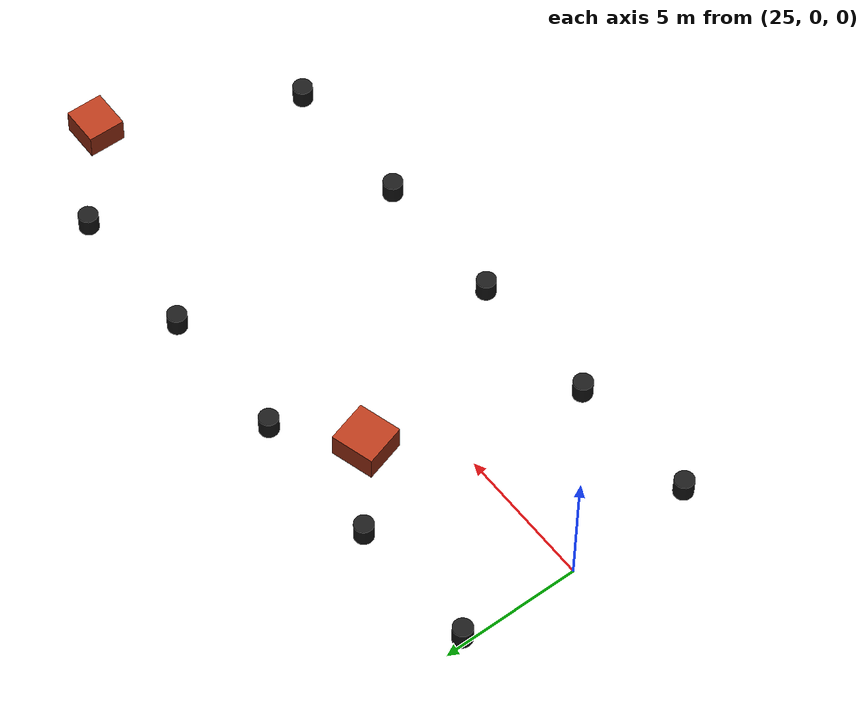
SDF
<sdf version="1.9">
 <world name="baja_track">
  <model name="obstacle_1">
   <static>true</static>
   <pose>32.50000 2.41393 0.49679 0 0 0.28152</pose>
   <link name="body">
    <collision name="collision">
     <geometry><box><size>1.5481 1.5109 0.9336</size></box></geometry>
     <surface><friction><ode><mu>0.9</mu><mu2>0.9</mu2></ode></friction></surface>
    </collision>
    <visual name="visual">
     <geometry><box><size>1.5481 1.5109 0.9336</size></box></geometry>
     <material>
      <ambient>0.42 0.12 0.07 1</ambient>
      <diffuse>0.70 0.22 0.10 1</diffuse>
      <pbr><metal><roughness>0.9</roughness><metalness>0.0</metalness></metal></pbr>
     </material>
    </visual>
   </link>
  </model>
  <model name="obstacle_2">
   <static>true</static>
   <pose>48.00000 1.99419 0.47470 0 0 -0.01950</pose>
   <link name="body">
    <collision name="collision">
     <geometry><box><size>1.3806 1.3039 0.8894</size></box></geometry>
     <surface><friction><ode><mu>0.9</mu><mu2>0.9</mu2></ode></friction></surface>
    </collision>
    <visual name="visual">
     <geometry><box><size>1.3806 1.3039 0.8894</size></box></geometry>
     <material>
      <ambient>0.42 0.12 0.07 1</ambient>
      <diffuse>0.70 0.22 0.10 1</diffuse>
      <pbr><metal><roughness>0.9</roughness><metalness>0.0</metalness></metal></pbr>
     </material>
    </visual>
   </link>
  </model>
  <model name="edge_tire_10">
   <static>true</static>
   <pose>25.00000 4.40000 0.79646 0 0 0.00000</pose>
   <link name="body">
    <collision name="collision">
     <geometry><cylinder><radius>0.340</radius><length>0.700</length></cylinder></geometry>
     <surface><friction><ode><mu>0.9</mu><mu2>0.9</mu2></ode></friction></surface>
    </collision>
    <visual name="visual">
     <geometry><cylinder><radius>0.340</radius><length>0.700</length></cylinder></geometry>
     <material>
      <ambient>0.05 0.05 0.05 1</ambient>
      <diffuse>0.10 0.10 0.10 1</diffuse>
      <pbr><metal><roughness>0.8</roughness><metalness>0.0</metalness></metal></pbr>
     </material>
    </visual>
   </link>
  </model>
  <model name="edge_tire_11">
   <static>true</static>
   <pose>25.00000 -4.40000 0.79646 0 0 0.00000</pose>
   <link name="body">
    <collision name="collision">
     <geometry><cylinder><radius>0.340</radius><length>0.700</length></cylinder></geometry>
     <surface><friction><ode><mu>0.9</mu><mu2>0.9</mu2></ode></friction></surface>
    </collision>
    <visual name="visual">
     <geometry><cylinder><radius>0.340</radius><length>0.700</length></cylinder></geometry>
     <material>
      <ambient>0.05 0.05 0.05 1</ambient>
      <diffuse>0.10 0.10 0.10 1</diffuse>
      <pbr><metal><roughness>0.8</roughness><metalness>0.0</metalness></metal></pbr>
     </material>
    </visual>
   </link>
  </model>
  <model name="edge_tire_12">
   <static>true</static>
   <pose>30.00000 4.40000 0.35000 0 0 0.00000</pose>
   <link name="body">
    <collision name="collision">
     <geometry><cylinder><radius>0.340</radius><length>0.700</length></cylinder></geometry>
     <surface><friction><ode><mu>0.9</mu><mu2>0.9</mu2></ode></friction></surface>
    </collision>
    <visual name="visual">
     <geometry><cylinder><radius>0.340</radius><length>0.700</length></cylinder></geometry>
     <material>
      <ambient>0.05 0.05 0.05 1</ambient>
      <diffuse>0.10 0.10 0.10 1</diffuse>
      <pbr><metal><roughness>0.8</roughness><metalness>0.0</metalness></metal></pbr>
     </material>
    </visual>
   </link>
  </model>
  <model name="edge_tire_13">
   <static>true</static>
   <pose>30.00000 -4.40000 0.35000 0 0 0.00000</pose>
   <link name="body">
    <collision name="collision">
     <geometry><cylinder><radius>0.340</radius><length>0.700</length></cylinder></geometry>
     <surface><friction><ode><mu>0.9</mu><mu2>0.9</mu2></ode></friction></surface>
    </collision>
    <visual name="visual">
     <geometry><cylinder><radius>0.340</radius><length>0.700</length></cylinder></geometry>
     <material>
      <ambient>0.05 0.05 0.05 1</ambient>
      <diffuse>0.10 0.10 0.10 1</diffuse>
      <pbr><metal><roughness>0.8</roughness><metalness>0.0</metalness></metal></pbr>
     </material>
    </visual>
   </link>
  </model>
  <model name="edge_tire_14">
   <static>true</static>
   <pose>35.00000 4.40000 0.35000 0 0 0.00000</pose>
   <link name="body">
    <collision name="collision">
     <geometry><cylinder><radius>0.340</radius><length>0.700</length></cylinder></geometry>
     <surface><friction><ode><mu>0.9</mu><mu2>0.9</mu2></ode></friction></surface>
    </collision>
    <visual name="visual">
     <geometry><cylinder><radius>0.340</radius><length>0.700</length></cylinder></geometry>
     <material>
      <ambient>0.05 0.05 0.05 1</ambient>
      <diffuse>0.10 0.10 0.10 1</diffuse>
      <pbr><metal><roughness>0.8</roughness><metalness>0.0</metalness></metal></pbr>
     </material>
    </visual>
   </link>
  </model>
  <model name="edge_tire_15">
   <static>true</static>
   <pose>35.00000 -4.40000 0.35000 0 0 0.00000</pose>
   <link name="body">
    <collision name="collision">
     <geometry><cylinder><radius>0.340</radius><length>0.700</length></cylinder></geometry>
     <surface><friction><ode><mu>0.9</mu><mu2>0.9</mu2></ode></friction></surface>
    </collision>
    <visual name="visual">
     <geometry><cylinder><radius>0.340</radius><length>0.700</length></cylinder></geometry>
     <material>
      <ambient>0.05 0.05 0.05 1</ambient>
      <diffuse>0.10 0.10 0.10 1</diffuse>
      <pbr><metal><roughness>0.8</roughness><metalness>0.0</metalness></metal></pbr>
     </material>
    </visual>
   </link>
  </model>
  <model name="edge_tire_16">
   <static>true</static>
   <pose>40.00000 4.40000 0.35000 0 0 0.00000</pose>
   <link name="body">
    <collision name="collision">
     <geometry><cylinder><radius>0.340</radius><length>0.700</length></cylinder></geometry>
     <surface><friction><ode><mu>0.9</mu><mu2>0.9</mu2></ode></friction></surface>
    </collision>
    <visual name="visual">
     <geometry><cylinder><radius>0.340</radius><length>0.700</length></cylinder></geometry>
     <material>
      <ambient>0.05 0.05 0.05 1</ambient>
      <diffuse>0.10 0.10 0.10 1</diffuse>
      <pbr><metal><roughness>0.8</roughness><metalness>0.0</metalness></metal></pbr>
     </material>
    </visual>
   </link>
  </model>
  <model name="edge_tire_17">
   <static>true</static>
   <pose>40.00000 -4.40000 0.35000 0 0 0.00000</pose>
   <link name="body">
    <collision name="collision">
     <geometry><cylinder><radius>0.340</radius><length>0.700</length></cylinder></geometry>
     <surface><friction><ode><mu>0.9</mu><mu2>0.9</mu2></ode></friction></surface>
    </collision>
    <visual name="visual">
     <geometry><cylinder><radius>0.340</radius><length>0.700</length></cylinder></geometry>
     <material>
      <ambient>0.05 0.05 0.05 1</ambient>
      <diffuse>0.10 0.10 0.10 1</diffuse>
      <pbr><metal><roughness>0.8</roughness><metalness>0.0</metalness></metal></pbr>
     </material>
    </visual>
   </link>
  </model>
  <model name="edge_tire_18">
   <static>true</static>
   <pose>45.00000 4.40000 0.35000 0 0 0.00000</pose>
   <link name="body">
    <collision name="collision">
     <geometry><cylinder><radius>0.340</radius><length>0.700</length></cylinder></geometry>
     <surface><friction><ode><mu>0.9</mu><mu2>0.9</mu2></ode></friction></surface>
    </collision>
    <visual name="visual">
     <geometry><cylinder><radius>0.340</radius><length>0.700</length></cylinder></geometry>
     <material>
      <ambient>0.05 0.05 0.05 1</ambient>
      <diffuse>0.10 0.10 0.10 1</diffuse>
      <pbr><metal><roughness>0.8</roughness><metalness>0.0</metalness></metal></pbr>
     </material>
    </visual>
   </link>
  </model>
  <model name="edge_tire_19">
   <static>true</static>
   <pose>45.00000 -4.40000 0.35000 0 0 0.00000</pose>
   <link name="body">
    <collision name="collision">
     <geometry><cylinder><radius>0.340</radius><length>0.700</length></cylinder></geometry>
     <surface><friction><ode><mu>0.9</mu><mu2>0.9</mu2></ode></friction></surface>
    </collision>
    <visual name="visual">
     <geometry><cylinder><radius>0.340</radius><length>0.700</length></cylinder></geometry>
     <material>
      <ambient>0.05 0.05 0.05 1</ambient>
      <diffuse>0.10 0.10 0.10 1</diffuse>
      <pbr><metal><roughness>0.8</roughness><metalness>0.0</metalness></metal></pbr>
     </material>
    </visual>
   </link>
  </model>
 </world>
</sdf>
